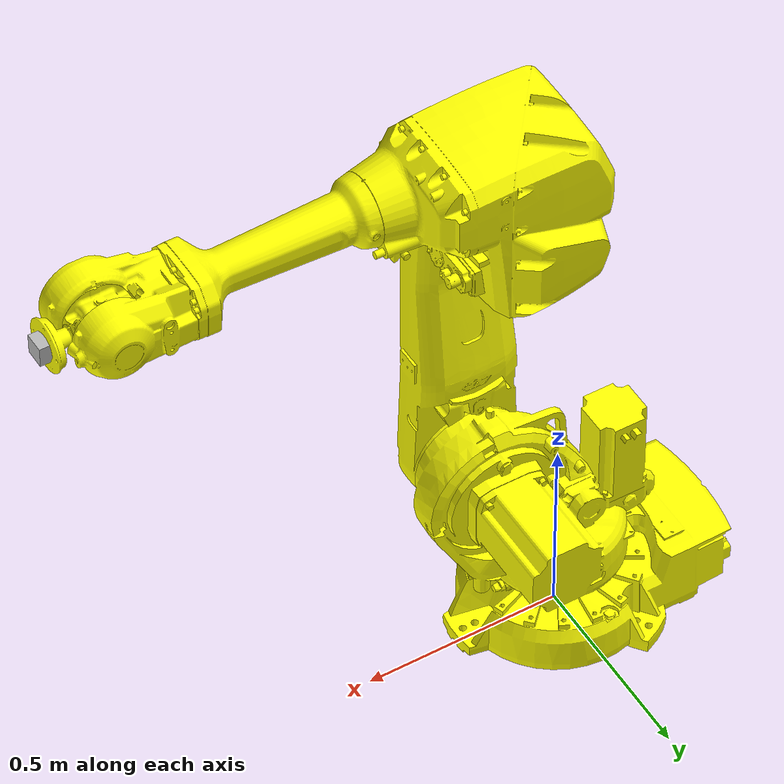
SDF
<sdf version='1.9'>
  <model name='abb_irb4600_60_205'>
    <link name='base_link'>
      <inertial>
        <pose>0 0 0 0 0 0</pose>
        <mass>1</mass>
        <inertia>
          <ixx>0.20830000000000001</ixx>
          <ixy>0</ixy>
          <ixz>0</ixz>
          <iyy>0.20830000000000001</iyy>
          <iyz>0</iyz>
          <izz>0.33329999999999999</izz>
        </inertia>
      </inertial>
      <collision name='base_link_fixed_joint_lump__collision_collision'>
        <pose>0 0 0 0 0 0</pose>
        <geometry>
          <mesh>
            <scale>1 1 1</scale>
            <uri>model://abb_irb4600_support/meshes/irb4600/collision/base_link.stl</uri>
          </mesh>
        </geometry>
      </collision>
      <visual name='base_link_fixed_joint_lump__visual_visual'>
        <pose>0 0 0 0 0 0</pose>
        <geometry>
          <mesh>
            <scale>1 1 1</scale>
            <uri>model://abb_irb4600_support/meshes/irb4600/visual/base_link.dae</uri>
          </mesh>
        </geometry>
        <material>
          <diffuse>1 1 0 1</diffuse>
          <ambient>1 1 0 1</ambient>
        </material>
      </visual>
      <gravity>false</gravity>
    </link>
    <joint name='joint_1' type='revolute'>
      <pose relative_to='base_link'>0 0 0.495 0 0 0</pose>
      <parent>base_link</parent>
      <child>link_1</child>
      <axis>
        <xyz>0 0 1</xyz>
        <limit>
          <lower>-3.141</lower>
          <upper>3.141</upper>
          <effort>0</effort>
          <velocity>3.0539999999999998</velocity>
        </limit>
        <dynamics>
          <spring_reference>0</spring_reference>
          <spring_stiffness>0</spring_stiffness>
        </dynamics>
      </axis>
    </joint>
    <link name='link_1'>
      <pose relative_to='joint_1'>0 0 0 0 0 0</pose>
      <inertial>
        <pose>0 0 0 0 0 0</pose>
        <mass>1</mass>
        <inertia>
          <ixx>0.20830000000000001</ixx>
          <ixy>0</ixy>
          <ixz>0</ixz>
          <iyy>0.20830000000000001</iyy>
          <iyz>0</iyz>
          <izz>0.33329999999999999</izz>
        </inertia>
      </inertial>
      <collision name='link_1_fixed_joint_lump__collision_collision'>
        <pose>0 0 0 0 0 0</pose>
        <geometry>
          <mesh>
            <scale>1 1 1</scale>
            <uri>model://abb_irb4600_support/meshes/irb4600/collision/link_1.stl</uri>
          </mesh>
        </geometry>
      </collision>
      <visual name='link_1_fixed_joint_lump__visual_visual'>
        <pose>0 0 0 0 0 0</pose>
        <geometry>
          <mesh>
            <scale>1 1 1</scale>
            <uri>model://abb_irb4600_support/meshes/irb4600/visual/link_1.dae</uri>
          </mesh>
        </geometry>
        <material>
          <diffuse>1 1 0 1</diffuse>
          <ambient>1 1 0 1</ambient>
        </material>
      </visual>
      <gravity>false</gravity>
    </link>
    <joint name='joint_2' type='revolute'>
      <pose relative_to='link_1'>0.175 0 0 0 0 0</pose>
      <parent>link_1</parent>
      <child>link_2</child>
      <axis>
        <xyz>0 1 0</xyz>
        <limit>
          <lower>-1.5700000000000001</lower>
          <upper>2.617</upper>
          <effort>0</effort>
          <velocity>3.0539999999999998</velocity>
        </limit>
        <dynamics>
          <spring_reference>0</spring_reference>
          <spring_stiffness>0</spring_stiffness>
        </dynamics>
      </axis>
    </joint>
    <link name='link_2'>
      <pose relative_to='joint_2'>0 0 0 0 0 0</pose>
      <inertial>
        <pose>0 0 0 0 0 0</pose>
        <mass>1</mass>
        <inertia>
          <ixx>0.20830000000000001</ixx>
          <ixy>0</ixy>
          <ixz>0</ixz>
          <iyy>0.20830000000000001</iyy>
          <iyz>0</iyz>
          <izz>0.33329999999999999</izz>
        </inertia>
      </inertial>
      <collision name='link_2_fixed_joint_lump__collision_collision'>
        <pose>0 0 0 0 0 0</pose>
        <geometry>
          <mesh>
            <scale>1 1 1</scale>
            <uri>model://abb_irb4600_support/meshes/irb4600_60_205/collision/link_2.stl</uri>
          </mesh>
        </geometry>
      </collision>
      <visual name='link_2_fixed_joint_lump__visual_visual'>
        <pose>0 0 0 0 0 0</pose>
        <geometry>
          <mesh>
            <scale>1 1 1</scale>
            <uri>model://abb_irb4600_support/meshes/irb4600_60_205/visual/link_2.dae</uri>
          </mesh>
        </geometry>
        <material>
          <diffuse>1 1 0 1</diffuse>
          <ambient>1 1 0 1</ambient>
        </material>
      </visual>
      <gravity>false</gravity>
    </link>
    <joint name='joint_3' type='revolute'>
      <pose relative_to='link_2'>0 0 0.9 0 0 0</pose>
      <parent>link_2</parent>
      <child>link_3</child>
      <axis>
        <xyz>0 1 0</xyz>
        <limit>
          <lower>-3.141</lower>
          <upper>1.3080000000000001</upper>
          <effort>0</effort>
          <velocity>3.0539999999999998</velocity>
        </limit>
        <dynamics>
          <spring_reference>0</spring_reference>
          <spring_stiffness>0</spring_stiffness>
        </dynamics>
      </axis>
    </joint>
    <link name='link_3'>
      <pose relative_to='joint_3'>0 0 0 0 0 0</pose>
      <inertial>
        <pose>0 0 0 0 0 0</pose>
        <mass>1</mass>
        <inertia>
          <ixx>0.20830000000000001</ixx>
          <ixy>0</ixy>
          <ixz>0</ixz>
          <iyy>0.20830000000000001</iyy>
          <iyz>0</iyz>
          <izz>0.33329999999999999</izz>
        </inertia>
      </inertial>
      <collision name='link_3_fixed_joint_lump__collision_collision'>
        <pose>0 0 0 0 0 0</pose>
        <geometry>
          <mesh>
            <scale>1 1 1</scale>
            <uri>model://abb_irb4600_support/meshes/irb4600_60_205/collision/link_3.stl</uri>
          </mesh>
        </geometry>
      </collision>
      <visual name='link_3_fixed_joint_lump__visual_visual'>
        <pose>0 0 0 0 0 0</pose>
        <geometry>
          <mesh>
            <scale>1 1 1</scale>
            <uri>model://abb_irb4600_support/meshes/irb4600_60_205/visual/link_3.dae</uri>
          </mesh>
        </geometry>
        <material>
          <diffuse>1 1 0 1</diffuse>
          <ambient>1 1 0 1</ambient>
        </material>
      </visual>
      <gravity>false</gravity>
    </link>
    <joint name='joint_4' type='revolute'>
      <pose relative_to='link_3'>0 0 0.175 0 0 0</pose>
      <parent>link_3</parent>
      <child>link_4</child>
      <axis>
        <xyz>1 0 0</xyz>
        <limit>
          <lower>-6.9809999999999999</lower>
          <upper>6.9809999999999999</upper>
          <effort>0</effort>
          <velocity>4.3630000000000004</velocity>
        </limit>
        <dynamics>
          <spring_reference>0</spring_reference>
          <spring_stiffness>0</spring_stiffness>
        </dynamics>
      </axis>
    </joint>
    <link name='link_4'>
      <pose relative_to='joint_4'>0 0 0 0 0 0</pose>
      <inertial>
        <pose>0 0 0 0 0 0</pose>
        <mass>1</mass>
        <inertia>
          <ixx>0.20830000000000001</ixx>
          <ixy>0</ixy>
          <ixz>0</ixz>
          <iyy>0.20830000000000001</iyy>
          <iyz>0</iyz>
          <izz>0.33329999999999999</izz>
        </inertia>
      </inertial>
      <collision name='link_4_fixed_joint_lump__collision_collision'>
        <pose>0 0 0 0 0 0</pose>
        <geometry>
          <mesh>
            <scale>1 1 1</scale>
            <uri>model://abb_irb4600_support/meshes/irb4600_60_205/collision/link_4.stl</uri>
          </mesh>
        </geometry>
      </collision>
      <visual name='link_4_fixed_joint_lump__visual_visual'>
        <pose>0 0 0 0 0 0</pose>
        <geometry>
          <mesh>
            <scale>1 1 1</scale>
            <uri>model://abb_irb4600_support/meshes/irb4600_60_205/visual/link_4.dae</uri>
          </mesh>
        </geometry>
        <material>
          <diffuse>1 1 0 1</diffuse>
          <ambient>1 1 0 1</ambient>
        </material>
      </visual>
      <gravity>false</gravity>
    </link>
    <joint name='joint_5' type='revolute'>
      <pose relative_to='link_4'>0.96 0 0 0 0 0</pose>
      <parent>link_4</parent>
      <child>link_5</child>
      <axis>
        <xyz>0 1 0</xyz>
        <limit>
          <lower>-2.181</lower>
          <upper>2.0939999999999999</upper>
          <effort>0</effort>
          <velocity>4.3630000000000004</velocity>
        </limit>
        <dynamics>
          <spring_reference>0</spring_reference>
          <spring_stiffness>0</spring_stiffness>
        </dynamics>
      </axis>
    </joint>
    <link name='link_5'>
      <pose relative_to='joint_5'>0 0 0 0 0 0</pose>
      <inertial>
        <pose>0 0 0 0 0 0</pose>
        <mass>1</mass>
        <inertia>
          <ixx>0.20830000000000001</ixx>
          <ixy>0</ixy>
          <ixz>0</ixz>
          <iyy>0.20830000000000001</iyy>
          <iyz>0</iyz>
          <izz>0.33329999999999999</izz>
        </inertia>
      </inertial>
      <collision name='link_5_fixed_joint_lump__collision_collision'>
        <pose>0 0 0 0 0 0</pose>
        <geometry>
          <mesh>
            <scale>1 1 1</scale>
            <uri>model://abb_irb4600_support/meshes/irb4600_60_205/collision/link_5.stl</uri>
          </mesh>
        </geometry>
      </collision>
      <visual name='link_5_fixed_joint_lump__visual_visual'>
        <pose>0 0 0 0 0 0</pose>
        <geometry>
          <mesh>
            <scale>1 1 1</scale>
            <uri>model://abb_irb4600_support/meshes/irb4600_60_205/visual/link_5.dae</uri>
          </mesh>
        </geometry>
        <material>
          <diffuse>1 1 0 1</diffuse>
          <ambient>1 1 0 1</ambient>
        </material>
      </visual>
      <gravity>false</gravity>
    </link>
    <joint name='joint_6' type='revolute'>
      <pose relative_to='link_5'>0.135 0 0 0 0 0</pose>
      <parent>link_5</parent>
      <child>link_6</child>
      <axis>
        <xyz>1 0 0</xyz>
        <limit>
          <lower>-6.9809999999999999</lower>
          <upper>6.9809999999999999</upper>
          <effort>0</effort>
          <velocity>6.2830000000000004</velocity>
        </limit>
        <dynamics>
          <spring_reference>0</spring_reference>
          <spring_stiffness>0</spring_stiffness>
        </dynamics>
      </axis>
    </joint>
    <link name='link_6'>
      <pose relative_to='joint_6'>0 0 0 0 0 0</pose>
      <inertial>
        <pose>0 0 0 0 0 0</pose>
        <mass>2</mass>
        <inertia>
          <ixx>0.54159999999999997</ixx>
          <ixy>0</ixy>
          <ixz>7.654042494670956e-18</ixz>
          <iyy>0.41660000000000003</iyy>
          <iyz>0</iyz>
          <izz>0.54159999999999997</izz>
        </inertia>
      </inertial>
      <collision name='link_6_fixed_joint_lump__collision_collision'>
        <pose>0 0 0 0 0 0</pose>
        <geometry>
          <mesh>
            <scale>1 1 1</scale>
            <uri>model://abb_irb4600_support/meshes/irb4600_60_205/collision/link_6.stl</uri>
          </mesh>
        </geometry>
      </collision>
      <collision name='link_6_fixed_joint_lump__tool0_collision_1'>
        <pose>0 0 0 0 1.570796326794897 0</pose>
        <geometry>
          <box>
            <size>0.05 0.05 0.05</size>
          </box>
        </geometry>
        <surface>
          <contact>
            <ode/>
          </contact>
          <friction>
            <ode/>
          </friction>
        </surface>
      </collision>
      <visual name='link_6_fixed_joint_lump__visual_visual'>
        <pose>0 0 0 0 0 0</pose>
        <geometry>
          <mesh>
            <scale>1 1 1</scale>
            <uri>model://abb_irb4600_support/meshes/irb4600_60_205/visual/link_6.dae</uri>
          </mesh>
        </geometry>
        <material>
          <diffuse>1 1 0 1</diffuse>
          <ambient>1 1 0 1</ambient>
        </material>
      </visual>
      <visual name='link_6_fixed_joint_lump__tool0_visual_1'>
        <pose>0 0 0 0 1.570796326794897 0</pose>
        <geometry>
          <box>
            <size>0.05 0.05 0.05</size>
          </box>
        </geometry>
      </visual>
      <gravity>false</gravity>
    </link>
    <plugin name='ign_ros2_control::IgnitionROS2ControlPlugin' filename='ign_ros2_control-system'>
      <parameters>/home/yangjingyun/robots/ros2_simulation/src/warehouse_manage/config/abb_irb4600_60_205.yaml</parameters>
    </plugin>
    <frame name='base_link-base' attached_to='base_link'>
      <pose>0 0 0 0 -0 0</pose>
    </frame>
    <frame name='base' attached_to='base_link-base'/>
    <frame name='link_6-tool0' attached_to='flange'>
      <pose>0 0 0 0 1.5708 0</pose>
    </frame>
    <frame name='tool0' attached_to='link_6-tool0'/>
    <frame name='joint_6-flange' attached_to='link_6'>
      <pose>0 0 0 0 -0 0</pose>
    </frame>
    <frame name='flange' attached_to='joint_6-flange'/>
  </model>
</sdf>
